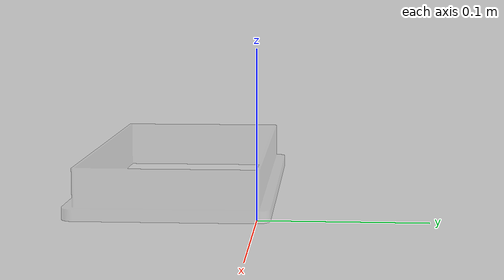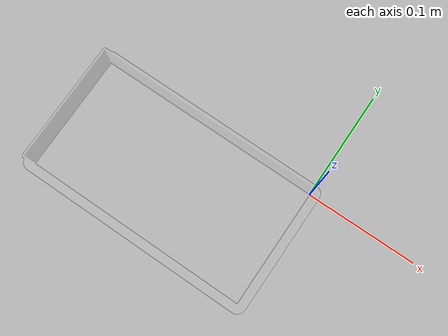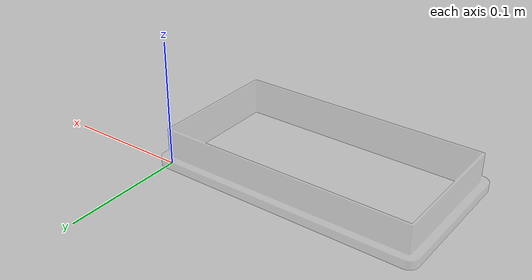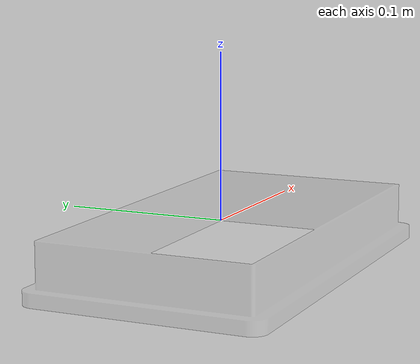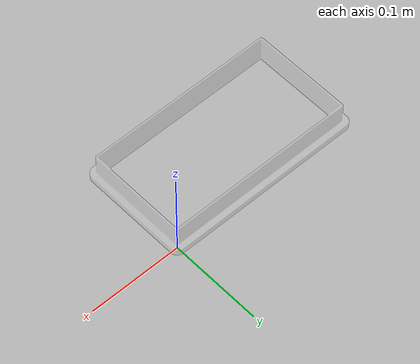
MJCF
<mujoco model="hole-visual">
  <asset>
    <mesh file="meshes/plate-with-hole.stl" name="hole_mesh" scale="0.002 0.002 0.002"/>
  </asset>
  <worldbody>
    <body>
      <body name="object">
        <geom pos="0 0 0" mesh="hole_mesh" type="mesh" rgba="0.8 0.8 0.8 0.3"  conaffinity="0" contype="0" group="1" mass="0.0001"/>
      </body>
      <site rgba="0 0 0 0" size="0.005" pos="0 0 -0.06" name="bottom_site"/>
      <site rgba="0 0 0 0" size="0.005" pos="0 0 0.04" name="top_site"/>
      <site rgba="0 0 0 0" size="0.005" pos="0.025 0.025 0" name="horizontal_radius_site"/>
    </body>
  </worldbody>
</mujoco>
